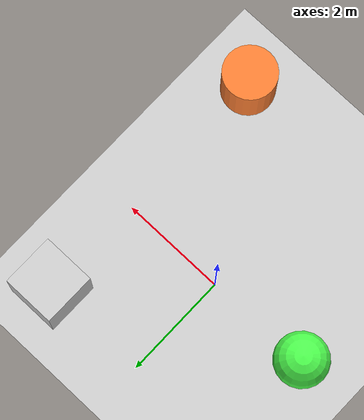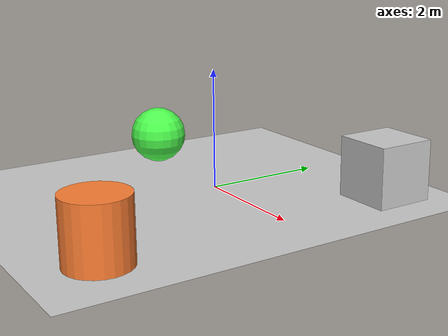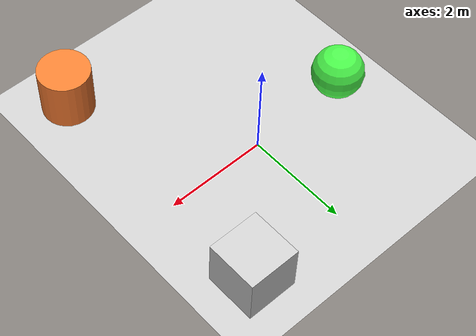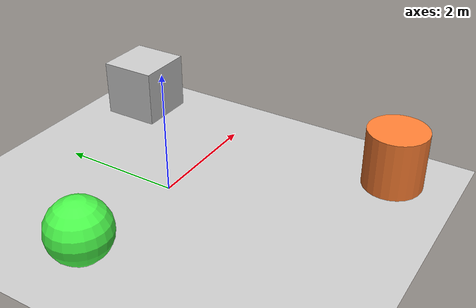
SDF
<?xml version="1.0" ?>
<sdf version="1.6">
  <world name="empty">
    <!-- Ground plane -->
    <include>
      <uri>model://ground_plane</uri>
    </include>

    <!-- Basic lighting -->
    <include>
      <uri>model://sun</uri>
    </include>

    <!-- Simple obstacles -->
    <include>
      <uri>model://box</uri>
      <pose>2 2 0 0 0 0</pose>
      <name>box_obstacle_1</name>
    </include>

    <include>
      <uri>model://cylinder</uri>
      <pose>2 -3 0 0 0 0</pose>
      <name>cylinder_obstacle</name>
    </include>

    <include>
      <uri>model://sphere</uri>
      <pose>-2 0 0 0 0 0</pose>
      <name>sphere_obstacle</name>
    </include>

    <!-- Physics settings (optional, for stability) -->
    <physics name="default_physics" type="ode">
      <max_step_size>0.001</max_step_size>
      <real_time_factor>1</real_time_factor>
      <real_time_update_rate>1000</real_time_update_rate>
    </physics>

  </world>
</sdf>

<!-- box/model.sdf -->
<sdf version="1.6">
  <model name="box">
    <static>true</static>
    <link name="link">
      <pose>0 0 0.5 0 0 0</pose>
      <collision name="collision">
        <geometry>
          <box><size>1 1 1</size></box>
        </geometry>
      </collision>
      <visual name="visual">
        <geometry>
          <box><size>1 1 1</size></box>
        </geometry>
        <material>
          <ambient>0.5 0.5 0.5 1</ambient>
          <diffuse>0.8 0.8 0.8 1</diffuse>
        </material>
      </visual>
    </link>
  </model>
</sdf>

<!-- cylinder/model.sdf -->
<sdf version="1.6">
  <model name="cylinder">
    <static>true</static>
    <link name="link">
      <pose>0 0 0.5 0 0 0</pose>
      <collision name="collision">
        <geometry>
          <cylinder><radius>0.5</radius><length>1</length></cylinder>
        </geometry>
      </collision>
      <visual name="visual">
        <geometry>
          <cylinder><radius>0.5</radius><length>1</length></cylinder>
        </geometry>
        <material>
          <ambient>0.8 0.4 0.2 1</ambient>
          <diffuse>1 0.5 0.2 1</diffuse>
        </material>
      </visual>
    </link>
  </model>
</sdf>

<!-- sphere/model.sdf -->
<sdf version="1.6">
  <model name="sphere">
    <static>true</static>
    <link name="link">
      <pose>0 0 0.5 0 0 0</pose>
      <collision name="collision">
        <geometry>
          <sphere><radius>0.5</radius></sphere>
        </geometry>
      </collision>
      <visual name="visual">
        <geometry>
          <sphere><radius>0.5</radius></sphere>
        </geometry>
        <material>
          <ambient>0.2 0.8 0.2 1</ambient>
          <diffuse>0.3 1 0.3 1</diffuse>
        </material>
      </visual>
    </link>
  </model>
</sdf>
